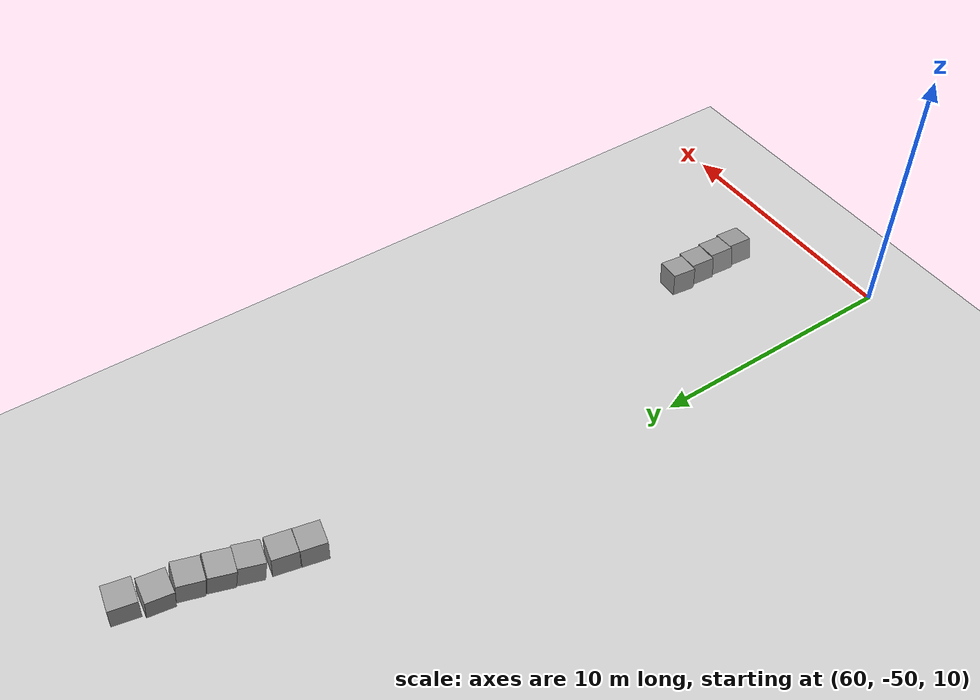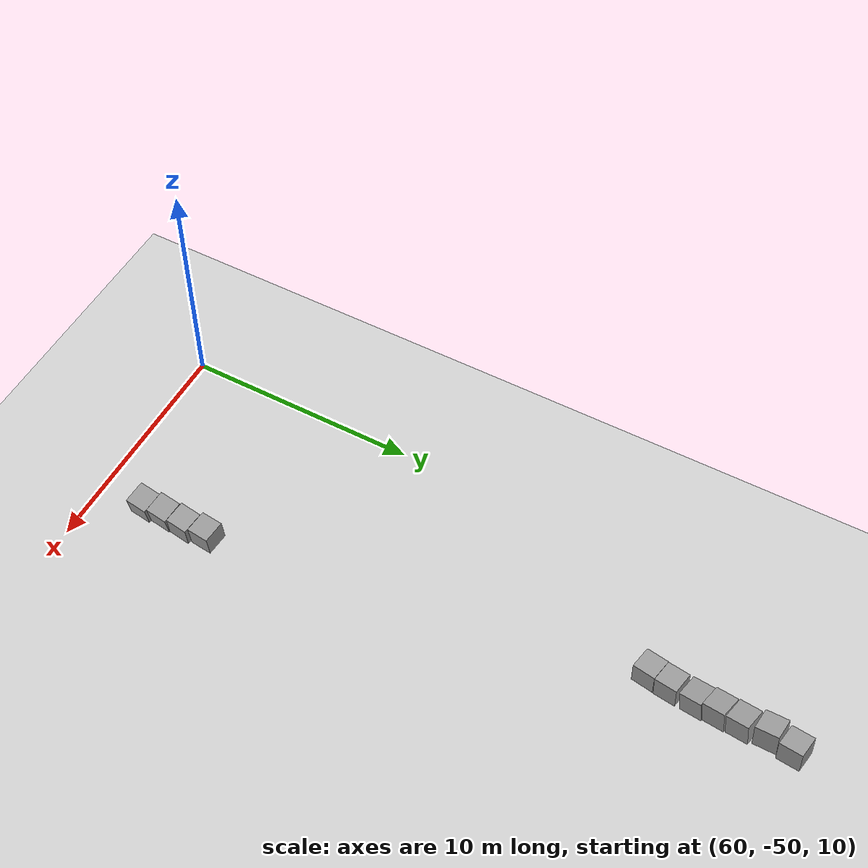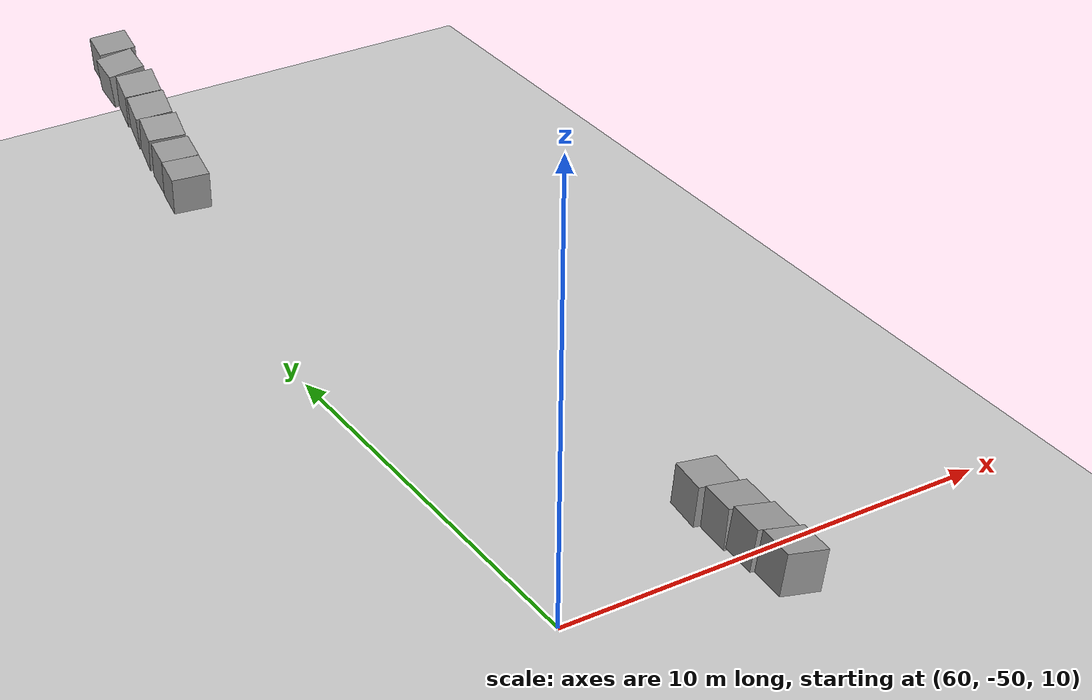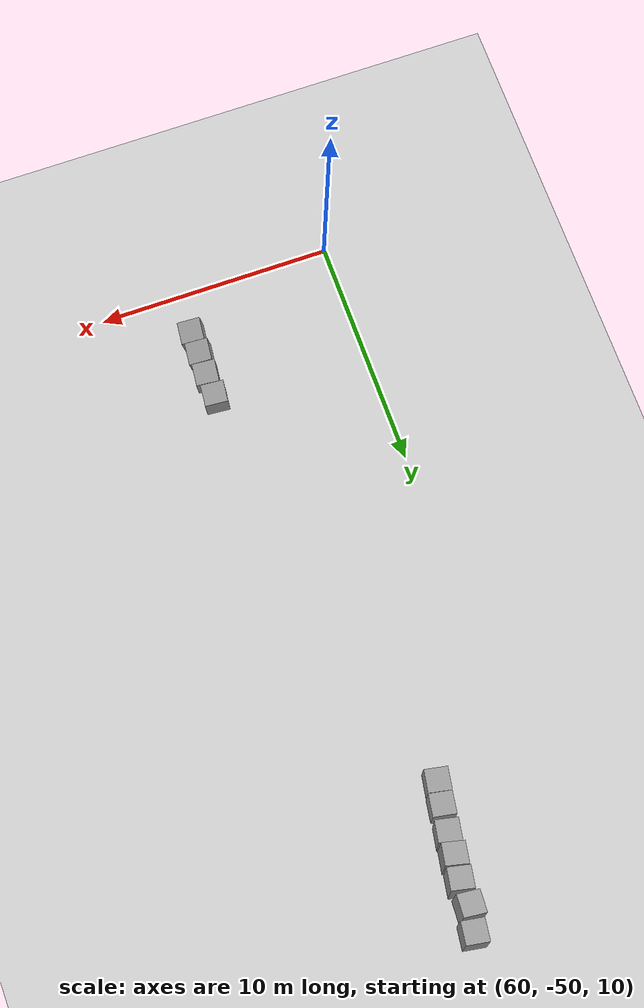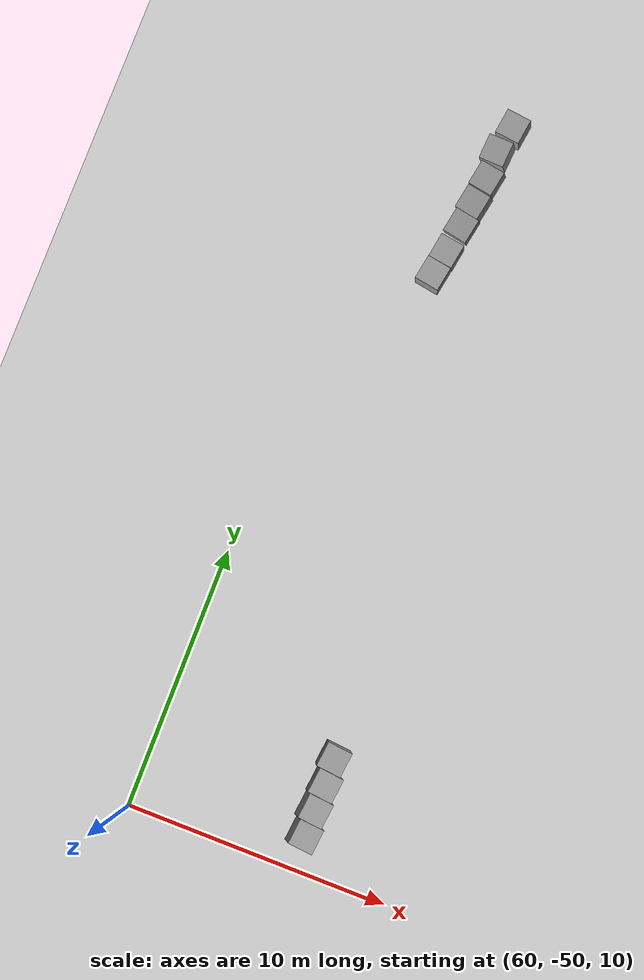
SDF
<sdf version="1.7">
 <world name="default">
  <model name="ground_plane">
   <static>1</static>
   <link name="link">
    <collision name="collision">
     <geometry><plane><normal>0 0 1</normal><size>100 100</size></plane></geometry>
     <surface>
      <contact><collide_bitmask>65535</collide_bitmask></contact>
      <friction><ode><mu>100</mu><mu2>50</mu2></ode></friction>
     </surface>
    </collision>
    <visual name="visual">
     <cast_shadows>0</cast_shadows>
     <geometry><plane><normal>0 0 1</normal><size>100 100</size></plane></geometry>
     <material>
      <script><uri>model://media/materials/scripts/gazebo.material</uri><name>Gazebo/Grey</name></script>
     </material>
    </visual>
   </link>
  </model>
  <model name="unit_box_clone_21">
   <pose>64.2394 -20.7767 8.91823 0.089954 -0.086234 -0.151233</pose>
   <link name="link">
    <inertial>
     <mass>1</mass>
     <inertia>
      <ixx>0.166667</ixx>
      <ixy>0</ixy>
      <ixz>0</ixz>
      <iyy>0.166667</iyy>
      <iyz>0</iyz>
      <izz>0.166667</izz>
     </inertia>
    </inertial>
    <collision name="collision"><geometry><box><size>1 1 1</size></box></geometry></collision>
    <visual name="visual">
     <geometry><box><size>1 1 1</size></box></geometry>
     <material>
      <script><name>Gazebo/Grey</name><uri>model://media/materials/scripts/gazebo.material</uri></script>
     </material>
    </visual>
   </link>
  </model>
  <model name="unit_box_clone_22">
   <pose>63.9932 -22.9184 8.65447 1.7542 -0.07361 -0.200663</pose>
   <link name="link">
    <inertial>
     <mass>1</mass>
     <inertia>
      <ixx>0.166667</ixx>
      <ixy>0</ixy>
      <ixz>0</ixz>
      <iyy>0.166667</iyy>
      <iyz>0</iyz>
      <izz>0.166667</izz>
     </inertia>
    </inertial>
    <collision name="collision"><geometry><box><size>1 1 1</size></box></geometry></collision>
    <visual name="visual">
     <geometry><box><size>1 1 1</size></box></geometry>
     <material>
      <script><name>Gazebo/Grey</name><uri>model://media/materials/scripts/gazebo.material</uri></script>
     </material>
    </visual>
   </link>
  </model>
  <model name="unit_box_clone_23">
   <pose>63.8413 -23.9243 8.47497 0.197686 -0.092969 -0.216745</pose>
   <link name="link">
    <inertial>
     <mass>1</mass>
     <inertia>
      <ixx>0.166667</ixx>
      <ixy>0</ixy>
      <ixz>0</ixz>
      <iyy>0.166667</iyy>
      <iyz>0</iyz>
      <izz>0.166667</izz>
     </inertia>
    </inertial>
    <collision name="collision"><geometry><box><size>1 1 1</size></box></geometry></collision>
    <visual name="visual">
     <geometry><box><size>1 1 1</size></box></geometry>
     <material>
      <script><name>Gazebo/Grey</name><uri>model://media/materials/scripts/gazebo.material</uri></script>
     </material>
    </visual>
   </link>
  </model>
  <model name="unit_box_clone_24">
   <pose>63.9906 -21.8437 8.81485 0.119701 -0.143652 -0.08597</pose>
   <link name="link">
    <inertial>
     <mass>1</mass>
     <inertia>
      <ixx>0.166667</ixx>
      <ixy>0</ixy>
      <ixz>0</ixz>
      <iyy>0.166667</iyy>
      <iyz>0</iyz>
      <izz>0.166667</izz>
     </inertia>
    </inertial>
    <collision name="collision"><geometry><box><size>1 1 1</size></box></geometry></collision>
    <visual name="visual">
     <geometry><box><size>1 1 1</size></box></geometry>
     <material>
      <script><name>Gazebo/Grey</name><uri>model://media/materials/scripts/gazebo.material</uri></script>
     </material>
    </visual>
   </link>
  </model>
  <model name="unit_box_clone_25">
   <pose>63.7108 -24.8967 8.27117 1.76772 -0.033808 -0.204896</pose>
   <link name="link">
    <inertial>
     <mass>1</mass>
     <inertia>
      <ixx>0.166667</ixx>
      <ixy>0</ixy>
      <ixz>0</ixz>
      <iyy>0.166667</iyy>
      <iyz>0</iyz>
      <izz>0.166667</izz>
     </inertia>
    </inertial>
    <collision name="collision"><geometry><box><size>1 1 1</size></box></geometry></collision>
    <visual name="visual">
     <geometry><box><size>1 1 1</size></box></geometry>
     <material>
      <script><name>Gazebo/Grey</name><uri>model://media/materials/scripts/gazebo.material</uri></script>
     </material>
    </visual>
   </link>
  </model>
  <model name="unit_box_clone_24_clone">
   <pose>63.5274 -26.0498 8.1221 0.082408 -0.037762 -0.16889</pose>
   <link name="link">
    <inertial>
     <mass>1</mass>
     <inertia>
      <ixx>0.166667</ixx>
      <ixy>0</ixy>
      <ixz>0</ixz>
      <iyy>0.166667</iyy>
      <iyz>0</iyz>
      <izz>0.166667</izz>
     </inertia>
    </inertial>
    <collision name="collision"><geometry><box><size>1 1 1</size></box></geometry></collision>
    <visual name="visual">
     <geometry><box><size>1 1 1</size></box></geometry>
     <material>
      <script><name>Gazebo/Grey</name><uri>model://media/materials/scripts/gazebo.material</uri></script>
     </material>
    </visual>
   </link>
  </model>
  <model name="unit_box_clone_24_clone_0">
   <pose>63.3401 -27.0533 8.05774 0.051996 -0.029161 -0.181392</pose>
   <link name="link">
    <inertial>
     <mass>1</mass>
     <inertia>
      <ixx>0.166667</ixx>
      <ixy>0</ixy>
      <ixz>0</ixz>
      <iyy>0.166667</iyy>
      <iyz>0</iyz>
      <izz>0.166667</izz>
     </inertia>
    </inertial>
    <collision name="collision"><geometry><box><size>1 1 1</size></box></geometry></collision>
    <visual name="visual">
     <geometry><box><size>1 1 1</size></box></geometry>
     <material>
      <script><name>Gazebo/Grey</name><uri>model://media/materials/scripts/gazebo.material</uri></script>
     </material>
    </visual>
   </link>
  </model>
  <model name="unit_box_clone_24_clone_1_clone_clone_2_clone_4_clone">
   <pose>66.4289 -45.8255 8.33011 1.59145 0.083862 -0.108535</pose>
   <link name="link">
    <inertial>
     <mass>1</mass>
     <inertia>
      <ixx>0.166667</ixx>
      <ixy>0</ixy>
      <ixz>0</ixz>
      <iyy>0.166667</iyy>
      <iyz>0</iyz>
      <izz>0.166667</izz>
     </inertia>
    </inertial>
    <collision name="collision"><geometry><box><size>1 1 1</size></box></geometry></collision>
    <visual name="visual">
     <geometry><box><size>1 1 1</size></box></geometry>
     <material>
      <script><name>Gazebo/Grey</name><uri>model://media/materials/scripts/gazebo.material</uri></script>
     </material>
    </visual>
   </link>
  </model>
  <model name="unit_box_clone_24_clone_1_clone_clone_2_clone_4_clone_0">
   <pose>66.4623 -46.8712 8.3373 1.53386 0.101984 -0.120418</pose>
   <link name="link">
    <inertial>
     <mass>1</mass>
     <inertia>
      <ixx>0.166667</ixx>
      <ixy>0</ixy>
      <ixz>0</ixz>
      <iyy>0.166667</iyy>
      <iyz>0</iyz>
      <izz>0.166667</izz>
     </inertia>
    </inertial>
    <collision name="collision"><geometry><box><size>1 1 1</size></box></geometry></collision>
    <visual name="visual">
     <geometry><box><size>1 1 1</size></box></geometry>
     <material>
      <script><name>Gazebo/Grey</name><uri>model://media/materials/scripts/gazebo.material</uri></script>
     </material>
    </visual>
   </link>
  </model>
  <model name="unit_box_clone_24_clone_1_clone_clone_2_clone_4_clone_1">
   <pose>66.4192 -47.8732 8.3966 1.53491 0.166799 -0.120065</pose>
   <link name="link">
    <inertial>
     <mass>1</mass>
     <inertia>
      <ixx>0.166667</ixx>
      <ixy>0</ixy>
      <ixz>0</ixz>
      <iyy>0.166667</iyy>
      <iyz>0</iyz>
      <izz>0.166667</izz>
     </inertia>
    </inertial>
    <collision name="collision"><geometry><box><size>1 1 1</size></box></geometry></collision>
    <visual name="visual">
     <geometry><box><size>1 1 1</size></box></geometry>
     <material>
      <script><name>Gazebo/Grey</name><uri>model://media/materials/scripts/gazebo.material</uri></script>
     </material>
    </visual>
   </link>
  </model>
  <model name="unit_box_clone_24_clone_1_clone_clone_2_clone_4_clone_2">
   <pose>66.4229 -48.8812 8.41262 1.53688 0.163748 -0.119956</pose>
   <link name="link">
    <inertial>
     <mass>1</mass>
     <inertia>
      <ixx>0.166667</ixx>
      <ixy>0</ixy>
      <ixz>0</ixz>
      <iyy>0.166667</iyy>
      <iyz>0</iyz>
      <izz>0.166667</izz>
     </inertia>
    </inertial>
    <collision name="collision"><geometry><box><size>1 1 1</size></box></geometry></collision>
    <visual name="visual">
     <geometry><box><size>1 1 1</size></box></geometry>
     <material>
      <script><name>Gazebo/Grey</name><uri>model://media/materials/scripts/gazebo.material</uri></script>
     </material>
    </visual>
   </link>
  </model>
 </world>
</sdf>
